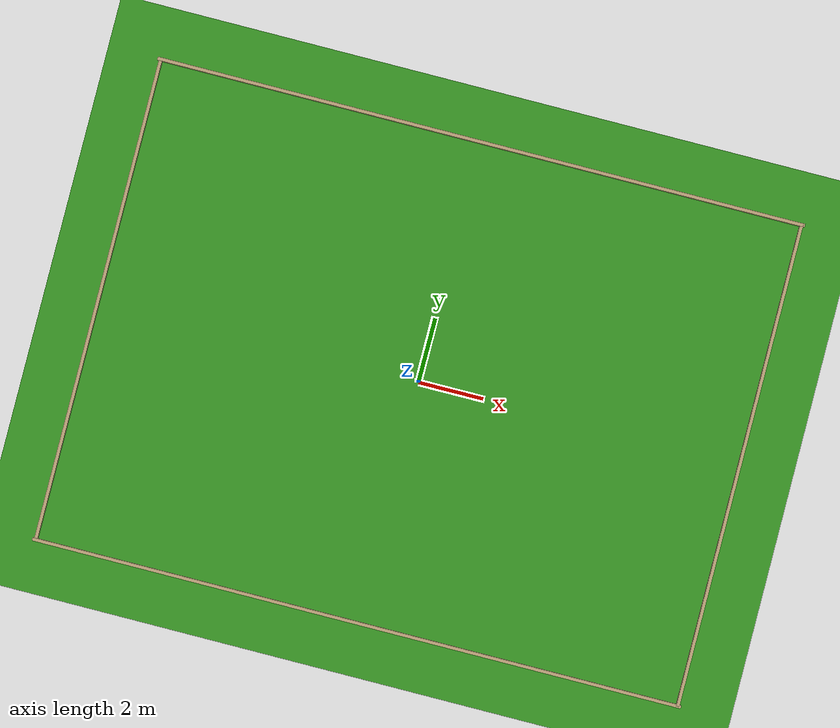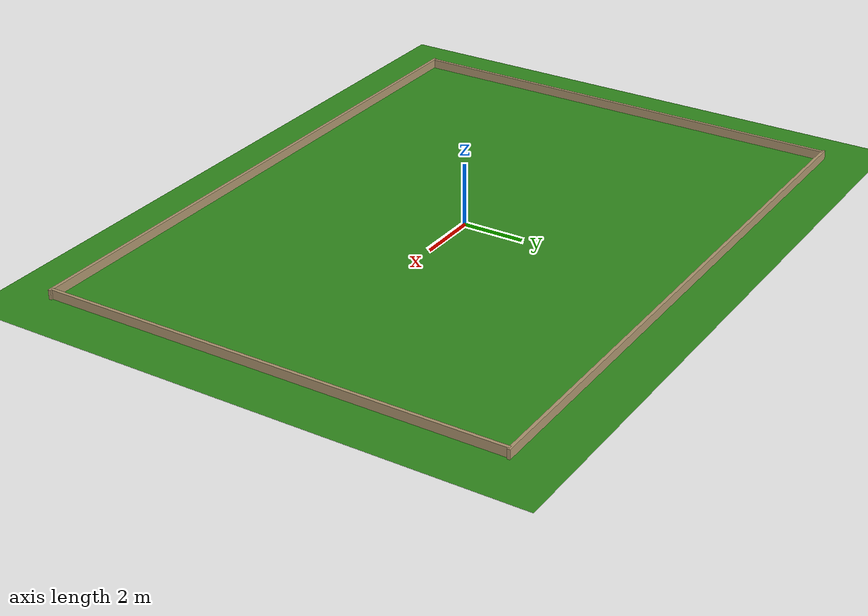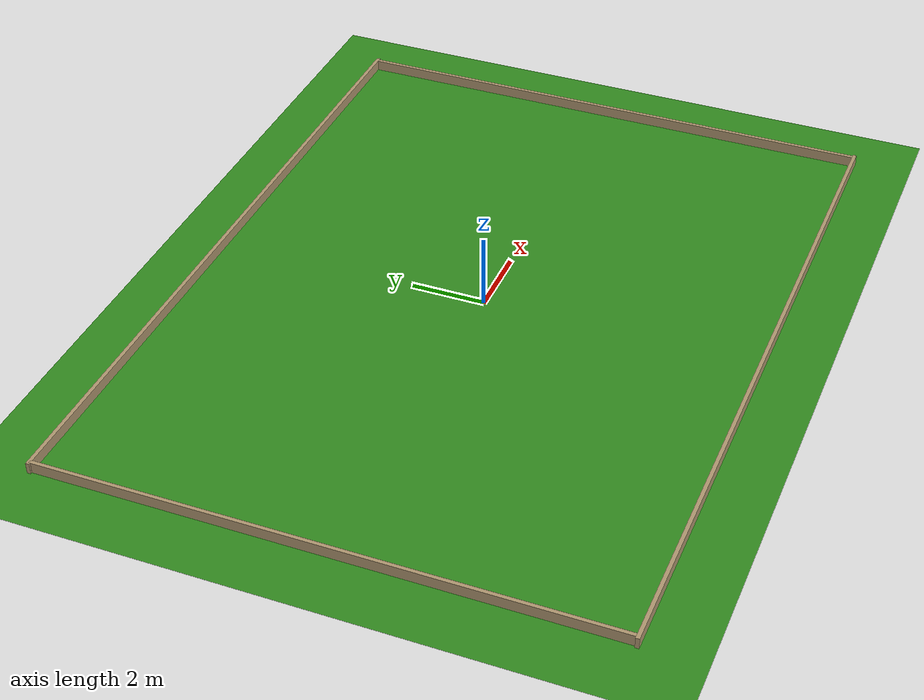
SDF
<?xml version="1.0"?>
<sdf version="1.9">
  <world name="empty_garden">

    <!-- ================================================================
         Physics
         ================================================================ -->
    <physics name="default_physics" default="true" type="ode">
      <max_step_size>0.001</max_step_size>
      <real_time_factor>1.0</real_time_factor>
      <real_time_update_rate>1000</real_time_update_rate>
      <ode>
        <solver>
          <type>quick</type>
          <iters>150</iters>
          <sor>1.4</sor>
        </solver>
        <constraints>
          <cfm>0.0</cfm>
          <erp>0.2</erp>
          <contact_max_correcting_vel>10.0</contact_max_correcting_vel>
          <contact_surface_layer>0.001</contact_surface_layer>
        </constraints>
      </ode>
    </physics>

    <!-- ================================================================
         Required Ignition Fortress plugins
         ================================================================ -->
    <plugin filename="gz-sim-physics-system"
            name="gz::sim::systems::Physics"/>

    <plugin filename="gz-sim-user-commands-system"
            name="gz::sim::systems::UserCommands"/>

    <plugin filename="gz-sim-scene-broadcaster-system"
            name="gz::sim::systems::SceneBroadcaster"/>

    <plugin filename="gz-sim-contact-system"
            name="gz::sim::systems::Contact"/>

    <plugin filename="gz-sim-imu-system"
            name="gz::sim::systems::Imu"/>

    <plugin filename="gz-sim-sensors-system"
            name="gz::sim::systems::Sensors">
      <render_engine>ogre2</render_engine>
    </plugin>

    <!-- ================================================================
         Lighting
         ================================================================ -->
    <light name="sun" type="directional">
      <cast_shadows>true</cast_shadows>
      <pose>0 0 10 0 0 0</pose>
      <diffuse>0.9 0.9 0.9 1</diffuse>
      <specular>0.3 0.3 0.3 1</specular>
      <direction>-0.5 0.1 -0.9</direction>
      <attenuation>
        <range>1000</range>
        <constant>0.9</constant>
        <linear>0.01</linear>
        <quadratic>0.001</quadratic>
      </attenuation>
    </light>

    <scene>
      <ambient>0.6 0.6 0.6 1.0</ambient>
      <background>0.53 0.81 0.92 1.0</background>
      <shadows>true</shadows>
    </scene>

    <!-- ================================================================
         Ground plane — grass colour
         ================================================================ -->
    <model name="ground_plane">
      <static>true</static>
      <link name="link">
        <collision name="collision">
          <geometry>
            <plane>
              <normal>0 0 1</normal>
              <size>30 30</size>
            </plane>
          </geometry>
          <surface>
            <friction>
              <ode>
                <mu>0.8</mu>
                <mu2>0.8</mu2>
              </ode>
            </friction>
          </surface>
        </collision>
        <visual name="visual">
          <geometry>
            <plane>
              <normal>0 0 1</normal>
              <size>30 30</size>
            </plane>
          </geometry>
          <material>
            <ambient>0.18 0.45 0.10 1</ambient>
            <diffuse>0.20 0.55 0.12 1</diffuse>
            <specular>0.05 0.05 0.05 1</specular>
          </material>
        </visual>
      </link>
    </model>

    <!-- ================================================================
         Garden boundary walls (20 × 15 m)
         ================================================================ -->

    <!-- North wall  y =  7.5 -->
    <model name="wall_north">
      <static>true</static>
      <pose>0 7.5 0.15 0 0 0</pose>
      <link name="link">
        <collision name="collision">
          <geometry><box><size>20.2 0.1 0.3</size></box></geometry>
        </collision>
        <visual name="visual">
          <geometry><box><size>20.2 0.1 0.3</size></box></geometry>
          <material>
            <ambient>0.65 0.55 0.40 1</ambient>
            <diffuse>0.70 0.60 0.45 1</diffuse>
          </material>
        </visual>
      </link>
    </model>

    <!-- South wall  y = -7.5 -->
    <model name="wall_south">
      <static>true</static>
      <pose>0 -7.5 0.15 0 0 0</pose>
      <link name="link">
        <collision name="collision">
          <geometry><box><size>20.2 0.1 0.3</size></box></geometry>
        </collision>
        <visual name="visual">
          <geometry><box><size>20.2 0.1 0.3</size></box></geometry>
          <material>
            <ambient>0.65 0.55 0.40 1</ambient>
            <diffuse>0.70 0.60 0.45 1</diffuse>
          </material>
        </visual>
      </link>
    </model>

    <!-- West wall  x = -10 -->
    <model name="wall_west">
      <static>true</static>
      <pose>-10.0 0 0.15 0 0 1.5708</pose>
      <link name="link">
        <collision name="collision">
          <geometry><box><size>15.0 0.1 0.3</size></box></geometry>
        </collision>
        <visual name="visual">
          <geometry><box><size>15.0 0.1 0.3</size></box></geometry>
          <material>
            <ambient>0.65 0.55 0.40 1</ambient>
            <diffuse>0.70 0.60 0.45 1</diffuse>
          </material>
        </visual>
      </link>
    </model>

    <!-- East wall  x = 10 -->
    <model name="wall_east">
      <static>true</static>
      <pose>10.0 0 0.15 0 0 1.5708</pose>
      <link name="link">
        <collision name="collision">
          <geometry><box><size>15.0 0.1 0.3</size></box></geometry>
        </collision>
        <visual name="visual">
          <geometry><box><size>15.0 0.1 0.3</size></box></geometry>
          <material>
            <ambient>0.65 0.55 0.40 1</ambient>
            <diffuse>0.70 0.60 0.45 1</diffuse>
          </material>
        </visual>
      </link>
    </model>

  </world>
</sdf>
